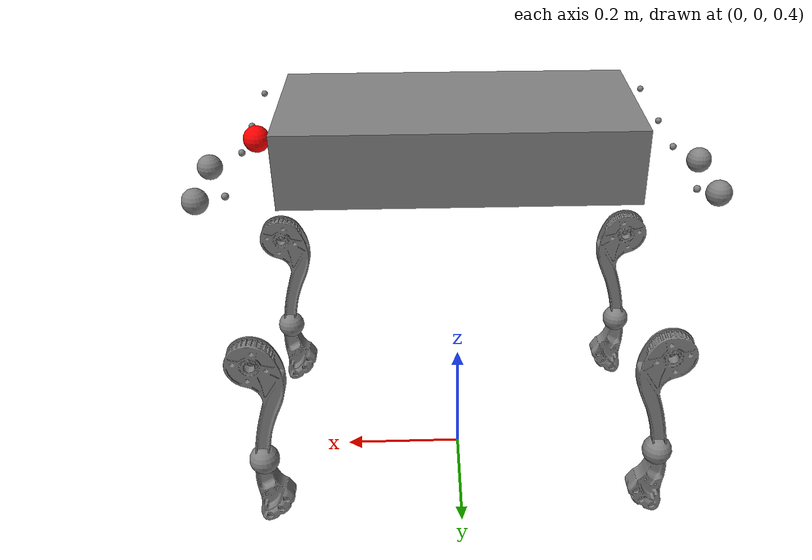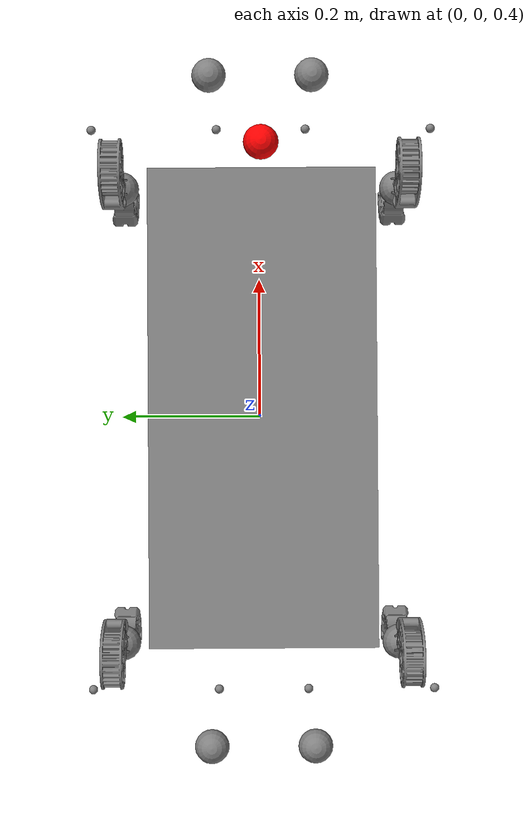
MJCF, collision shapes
<!--Please note the -->
<mujoco model="sirius">
    <compiler angle="radian" meshdir="../assets" autolimits="true" eulerseq="ZYX"/>
    <option cone="elliptic" impratio="100" integrator="implicitfast" timestep="0.001"/>

    <visual>
        <global ellipsoidinertia="true"/>
    </visual>
    <!--    mujoco default properties-->
    <default>
        <default class="sirius">
            <geom friction="0.6" margin="0.00001" condim="1"/>
            <!--            armature: inertia of rotors; joint global axis 0.0000097913844*gr^2-->
            <joint axis="0 1 0" damping="0.01" armature="0.0092" frictionloss="0.01" actuatorfrcrange="-43 43"/>
            <default class="abad">
                <!--                joint range-->
                <joint pos="0 0 0" axis="1 0 0" range="-1.0472 1.0472"/>
                <!--                control position -->
                <motor ctrlrange="-43 43"/>
            </default>
            <default class="hip">
                <joint range="-3.1415926 3.1415926"/>
                <motor ctrlrange="-43 43"/>
            </default>
            <default class="knee">
                <joint range="-2.9 2.9"/>
                <!--                output torque range, knees with larger gear ratio-->
                <motor forcerange="-86 86" ctrlrange="-86 86"/>
            </default>

            <default class="knee_f">
                <joint range="-2.6965336943312392 -0.9162978572970231"/>
                <!--                output torque range, knees with larger gear ratio-->
                <motor forcerange="-86 86" ctrlrange="-86 86"/>
            </default>

            <default class="knee_r">
                <joint range="0.9162978572970231 2.6965336943312392"/>
                <!--                output torque range, knees with larger gear ratio-->
                <motor forcerange="-86 86" ctrlrange="-86 86"/>
            </default>
            <!--            visual mesh for sensors and markers-->
            <default class="visual">
                <geom type="mesh" contype="0" conaffinity="0" group="2"/>
            </default>
            <!--            build collision model-->
            <default class="collision">
                <geom group="3" type="capsule"/>
                <default class="foot">
                    <geom type="sphere" size="0.024" priority="1" condim="6"
                          friction="0.5 0.02 0.01"
                          pos="0 0 -0.191"/>
                </default>
                <!--                body is based on local frame-->
                <default class="thigh_fl1">
                    <geom size="0.048 0.05685" pos="0 0.05735 0" quat="1 1 0 0" type="cylinder"/>
                </default>
                <default class="thigh_fl2">
                    <geom size="0.025 0.08295" pos="0 0.1282 -0.10795" quat="1 0 0 0" type="capsule"/>
                </default>

                <default class="thigh_fr1">
                    <geom size="0.048 0.05685" pos="0 -0.05735 0" quat="1 1 0 0" type="cylinder"/>
                </default>
                <default class="thigh_fr2">
                    <geom size="0.025 0.08295" pos="0 -0.1282 -0.10795" quat="1 0 0 0" type="capsule"/>
                </default>

                <default class="thigh_rl1">
                    <geom size="0.048 0.05685" pos="0 0.05735 0" quat="1 1 0 0" type="cylinder"/>
                </default>
                <default class="thigh_rl2">
                    <geom size="0.025 0.08295" pos="0 0.1282 -0.10795" quat="1 0 0 0" type="capsule"/>
                </default>

                <default class="thigh_rr1">
                    <geom size="0.048 0.05685" pos="0 -0.05735 0" quat="1 1 0 0" type="cylinder"/>
                </default>
                <default class="thigh_rr2">
                    <geom size="0.025 0.08295" pos="0 -0.1282 -0.10795" quat="1 0 0 0" type="capsule"/>
                </default>

                <default class="calf">
                    <geom size="0.01 0.0855" pos="0 0 -0.0955" quat="1 0 0 0" type="capsule"/>
                </default>
            </default>
        </default>
    </default>

    <asset>
        <material name="sirius" rgba="0.1 0.1 0.1 1"/>
        <mesh class="sirius" file="base_link.STL"/>
        <mesh class="sirius" file="fl_abad_link.STL"/>
        <mesh class="sirius" file="fl_hip_link.STL"/>
        <mesh class="sirius" file="fl_knee_link.STL"/>
        <mesh class="sirius" file="fr_abad_link.STL"/>
        <mesh class="sirius" file="fr_hip_link.STL"/>
        <mesh class="sirius" file="fr_knee_link.STL"/>
        <mesh class="sirius" file="rl_abad_link.STL"/>
        <mesh class="sirius" file="rl_hip_link.STL"/>
        <mesh class="sirius" file="rl_knee_link.STL"/>
        <mesh class="sirius" file="rr_abad_link.STL"/>
        <mesh class="sirius" file="rr_hip_link.STL"/>
        <mesh class="sirius" file="rr_knee_link.STL"/>
    </asset>

    <worldbody>
        <body name="base_link" pos="0 0 1.0" childclass="sirius">
            <camera name="tracking" mode="trackcom" pos="0 -1 0.8" xyaxes="1 0 0 0 1 1"/>
            <!--            type of the site is sphere by default-->
            <site name="head" pos="0.3 0 0" rgba="1 0 0 1" size="0.02" group="0"/>
            <inertial pos="0.02677303 0.000 0.00632505"
                      mass="21.5654" fullinertia="0.10767656 2.82545723 2.85571634 0.00000033 -0.00871520 -0.00000024"/>
            <freejoint/>
            <geom class="visual" pos="0 0.0 0" mesh="base_link" rgba="0.847058824 0.643137255 0.498039216 1"/>
            <geom class="collision" type="box" size="0.2623 0.125 0.056"/>
<!--            &lt;!&ndash;            build four abad motors&ndash;&gt;-->
            <geom class="collision" type="sphere" pos="0.3905 -0.060 -0.0718" size="0.020"/>
            <geom class="collision" type="sphere" pos="-0.3905 -0.060 -0.0718" size="0.020"/>
            <geom class="collision" type="sphere" pos="0.3905 0.060 -0.0718" size="0.020"/>
            <geom class="collision" type="sphere" pos="-0.3905 0.060 -0.0718" size="0.020"/>
<!--            &lt;!&ndash;            build the pads&ndash;&gt;-->
            <site name="imu" pos="0 0 0"/>
            <body name="FR_hip" pos="0.314 -0.050 0" quat="1 0 0 0">
                <inertial pos="-0.00001787 -0.00607236 -0.00008968"
                          mass="0.7766" fullinertia="0.00066364 0.00093712 0.001006375 0 0 -0.00000289"/>
                <site name="fr_abad_torque_site" pos="0 0 0"/>
                <joint class="abad" name="FR_hip_joint"/>
                <geom class="visual" mesh="fr_abad_link" quat="1 0 0 0" rgba="0.152941176 0.160784314 0.196078431 1"/>
                <body name="FR_thigh" pos="0 -0.1408 0" quat="1 0 0 0">
                    <inertial pos="-0.00142239 0.0245184 -0.06737029" mass="2.1028"
                              fullinertia="0.03392455 0.03116087 0.00483257 0.00001021 -0.00038283 0.00004691"/>

                    <site name="fr_hip_torque_site" pos="0 0 0"/>
                    <joint class="hip" name="FR_thigh_joint"/>
                    <geom class="visual" mesh="fr_hip_link" rgba="0.905882353 0.925490196 0.937254902 1"/>
                    <body name="FR_calf" pos="0.0 0.0 -0.272">
                        <inertial pos="-0.00804831 0.00000107 -0.12689414"
                                  mass="0.4842"
                                  fullinertia="0.01527064 0.01543121 0.00022068 0 -0.00063844 0.00000003"/>
                        <joint class="knee_f" name="FR_calf_joint"/>
                        <site name="fr_knee_torque_site" pos="0 0 0"/>
                        <geom class="visual" mesh="fr_knee_link" rgba="0.058823529 0.443137255 0.450980392 1"/>
                        <geom name="fr_calf_collision" type="mesh" mesh="fr_knee_link" priority="1" condim="6" solimp="0.5 0.95 0.001 0.5 2"
                              friction="0.8 0.02 0.01" group="3"/>
                        <geom name="FR_foot" class="foot" />
                        <body name="FR_foot" pos="0 0 -0.272" />
                    </body>
                </body>
            </body>

            <body name="FL_hip" pos="0.314 0.050 0" quat="1 0 0 0">
                <inertial pos="0.00001787 0.00607236 -0.00008968"
                          mass="0.7766" fullinertia="0.00066364 0.00093712 0.001006375 0 0 0.00000289"/>
                <joint class="abad" name="FL_hip_joint"/>
                <site name="fl_abad_torque_site" pos="0 0 0"/>
                <geom class="visual" mesh="fl_abad_link" quat="1 0 0 0" rgba="0.152941176 0.160784314 0.196078431 1"/>
                <body name="FL_thigh" pos="0 0.1408 0" quat="1 0 0 0">
                    <inertial pos="-0.00142239 -0.0245184 -0.06737029" mass="2.1028"
                              fullinertia="0.03392455 0.03116087 0.00483257 -0.00001021 -0.00038283 -0.00004691"/>
                    <joint class="hip" name="FL_thigh_joint"/>
                    <site name="fl_hip_torque_site" pos="0 0 0"/>
                    <geom class="visual" mesh="fl_hip_link" rgba="0.905882353 0.925490196 0.937254902 1"/>
                    <body name="FL_calf" pos="0.0 0.0 -0.272">
                        <inertial pos="-0.00804831 0.00000107 -0.12689414"
                                  mass="0.4842"
                                  fullinertia="0.01527064 0.01543121 0.00022068 0 -0.00063844 0.00000002"/>
                        <joint class="knee_f" name="FL_calf_joint"/>
                        <site name="fl_knee_torque_site" pos="0 0 0"/>
                        <geom class="visual" mesh="fl_knee_link" rgba="0.058823529 0.443137255 0.450980392 1"/>
                        <geom name="fl_calf_collision" type="mesh" mesh="fl_knee_link" priority="1" condim="6" solimp="0.5 0.95 0.001 0.5 2"
                              friction="0.6 0.02 0.01" group="3"/>
                        <geom name="FL_foot" class="foot" />
                        <body name="FL_foot" pos="0 0 -0.272" />
                    </body>
                </body>
            </body>

            <body name="RR_hip" pos="-0.314 -0.050 0" quat="1 0 0 0">
                <inertial pos="-0.00001787 -0.00607236 -0.00008968"
                          mass="0.7766" fullinertia="0.00066364 0.00093712 0.001006375 0 0 -0.00000289"/>
                <joint class="abad" name="RR_hip_joint"/>
                <site name="rr_abad_torque_site" pos="0 0 0"/>
                <geom class="visual" mesh="rr_abad_link" quat="1 0 0 0" rgba="0.152941176 0.160784314 0.196078431 1"/>
                <body name="RR_thigh" pos="0 -0.1408 0">
                    <inertial pos="0.00142239 0.0245184 -0.06737029" mass="2.1028"
                              fullinertia="0.03392455 0.03116087 0.00483257 -0.00001021 0.00038283 0.00004691"/>
                    <joint class="hip" name="RR_thigh_joint"/>
                    <site name="rr_hip_torque_site" pos="0 0 0"/>
                    <geom class="visual" mesh="rr_hip_link" rgba="0.905882353 0.925490196 0.937254902 1"/>
                    <body name="RR_calf" pos="0.0 0.0 -0.272">
                        <inertial pos="0.00804831 -0.00000107 -0.12689414" mass="0.4842"
                                  fullinertia="0.01527064 0.01543121 0.00022068 0 0.00063844 -0.00000002"/>
                        <joint class="knee_r" name="RR_calf_joint"/>
                        <site name="rr_knee_torque_site" pos="0 0 0"/>
                        <geom class="visual" mesh="rr_knee_link" rgba="0.058823529 0.443137255 0.450980392 1"/>
                        <geom name="rr_calf_collision" type="mesh" mesh="rr_knee_link" priority="1" condim="6" solimp="0.5 0.95 0.001 0.5 2"
                              friction="0.6 0.02 0.01" group="3"/>
                        <geom name="RR_foot" class="foot" />
                        <body name="RR_foot" pos="0 0 -0.272" />
                    </body>
                </body>
            </body>

            <body name="RL_hip" pos="-0.314 0.050 0" quat="1 0 0 0">
                <inertial pos="0.00001787 0.00607236 -0.00008968"
                          mass="0.7766" fullinertia="0.00066364 0.00093712 0.001006375 0 0 0.00000289"/>
                <joint class="abad" name="RL_hip_joint"/>
                <site name="rl_abad_torque_site" pos="0 0 0"/>
                <geom class="visual" mesh="rl_abad_link" quat="1 0 0 0" rgba="0.152941176 0.160784314 0.196078431 1"/>

                <body name="RL_thigh" pos="0 0.1408 0" quat="1 0 0 0">
                    <inertial pos="0.00142239 -0.0245184 -0.06737029" mass="2.1028"
                              fullinertia="0.03392455 0.03116087 0.00483257 0.00001021 0.00038283 -0.00004691"/>
                    <joint class="hip" name="RL_thigh_joint"/>
                    <site name="rl_hip_torque_site" pos="0 0 0"/>
                    <geom class="visual" mesh="rl_hip_link" rgba="0.905882353 0.925490196 0.937254902 1"/>
                    <body name="RL_calf" pos="0.0 0.0 -0.272">
                        <inertial pos="0.00804831 -0.00000107 -0.12689414"
                                  mass="0.4842"
                                  fullinertia="0.01527064 0.01543121 0.00022068 0 0.00063844 -0.00000002"/>
                        <joint class="knee_r" name="RL_calf_joint"/>
                        <site name="rl_knee_torque_site" pos="0 0 0"/>
                        <geom class="visual" mesh="rl_knee_link" rgba="0.058823529 0.443137255 0.450980392 1"/>
                        <geom name="rl_calf_collision" type="mesh" mesh="rl_knee_link" priority="1" condim="6" solimp="0.5 0.95 0.001 0.5 2"
                              friction="0.6 0.02 0.01" group="3"/>
                        <geom name="RL_foot" class="foot" />
                        <body name="RL_foot" pos="0 0 -0.272" />
                    </body>
                </body>
            </body>
        </body>
    </worldbody>

    <actuator>
        <motor class="abad" name="FR_hip_joint" joint="FR_hip_joint" />
        <motor class="hip" name="FR_thigh_joint" joint="FR_thigh_joint" />
        <motor class="knee" name="FR_calf_joint" joint="FR_calf_joint" />
        <motor class="abad" name="FL_hip_joint" joint="FL_hip_joint" />
        <motor class="hip" name="FL_thigh_joint" joint="FL_thigh_joint" />
        <motor class="knee" name="FL_calf_joint" joint="FL_calf_joint" />
        <motor class="abad" name="RR_hip_joint" joint="RR_hip_joint" />
        <motor class="hip" name="RR_thigh_joint" joint="RR_thigh_joint" />
        <motor class="knee" name="RR_calf_joint" joint="RR_calf_joint" />
        <motor class="abad" name="RL_hip_joint" joint="RL_hip_joint" />
        <motor class="hip" name="RL_thigh_joint" joint="RL_thigh_joint" />
        <motor class="knee" name="RL_calf_joint" joint="RL_calf_joint" />
    </actuator>

    <sensor>
        <gyro name="imu_gyro" site="imu"/>
        <framequat name="imu_quat" objtype="site" objname="imu"/>
        <accelerometer name="imu_acc" site="imu"/>

        <jointpos name="FR_hip_pos" joint="FR_hip_joint" />
        <jointpos name="FR_thigh_pos" joint="FR_thigh_joint" />
        <jointpos name="FR_calf_pos" joint="FR_calf_joint" />
        <jointpos name="FL_hip_pos" joint="FL_hip_joint" />
        <jointpos name="FL_thigh_pos" joint="FL_thigh_joint" />
        <jointpos name="FL_calf_pos" joint="FL_calf_joint" />
        <jointpos name="RR_hip_pos" joint="RR_hip_joint" />
        <jointpos name="RR_thigh_pos" joint="RR_thigh_joint" />
        <jointpos name="RR_calf_pos" joint="RR_calf_joint" />
        <jointpos name="RL_hip_pos" joint="RL_hip_joint" />
        <jointpos name="RL_thigh_pos" joint="RL_thigh_joint" />
        <jointpos name="RL_calf_pos" joint="RL_calf_joint" />

        <jointvel name="FR_hip_vel" joint="FR_hip_joint" />
        <jointvel name="FR_thigh_vel" joint="FR_thigh_joint" />
        <jointvel name="FR_calf_vel" joint="FR_calf_joint" />
        <jointvel name="FL_hip_vel" joint="FL_hip_joint" />
        <jointvel name="FL_thigh_vel" joint="FL_thigh_joint" />
        <jointvel name="FL_calf_vel" joint="FL_calf_joint" />
        <jointvel name="RR_hip_vel" joint="RR_hip_joint" />
        <jointvel name="RR_thigh_vel" joint="RR_thigh_joint" />
        <jointvel name="RR_calf_vel" joint="RR_calf_joint" />
        <jointvel name="RL_hip_vel" joint="RL_hip_joint" />
        <jointvel name="RL_thigh_vel" joint="RL_thigh_joint" />
        <jointvel name="RL_calf_vel" joint="RL_calf_joint" />

        <torque name="FR_hip_torque" site="fr_abad_torque_site"/>
        <torque name="FR_thigh_torque" site="fr_hip_torque_site"/>
        <torque name="FR_calf_torque" site="fr_knee_torque_site"/>

        <torque name="FL_hip_torque" site="fl_abad_torque_site"/>
        <torque name="FL_thigh_torque" site="fl_hip_torque_site"/>
        <torque name="FL_calf_torque" site="fl_knee_torque_site"/>

        <torque name="RR_hip_torque" site="rr_abad_torque_site"/>
        <torque name="RR_thigh_torque" site="rr_hip_torque_site"/>
        <torque name="RR_calf_torque" site="rr_knee_torque_site"/>

        <torque name="RL_hip_torque" site="rl_abad_torque_site"/>
        <torque name="RL_thigh_torque" site="rl_hip_torque_site"/>
        <torque name="RL_calf_torque" site="rl_knee_torque_site"/>
    </sensor>

    <keyframe>
        <key name="home"
             qpos="0 0 0.25 1 0 0 0 0.0 1.57086 -2.9 0 1.57086 -2.9 -0.0 -1.57086 2.9 0.0 -1.57086 2.9"/>
    </keyframe>
</mujoco>
